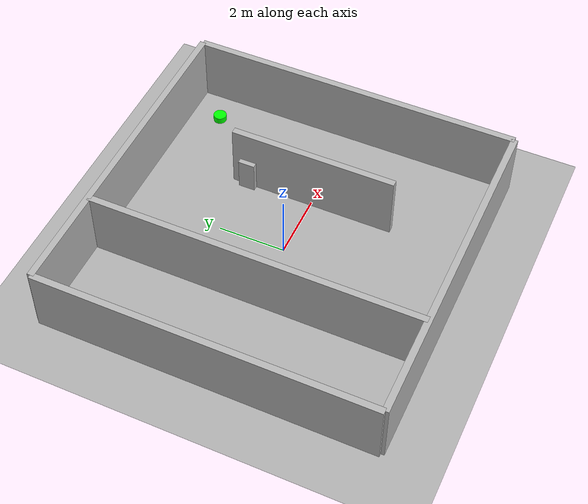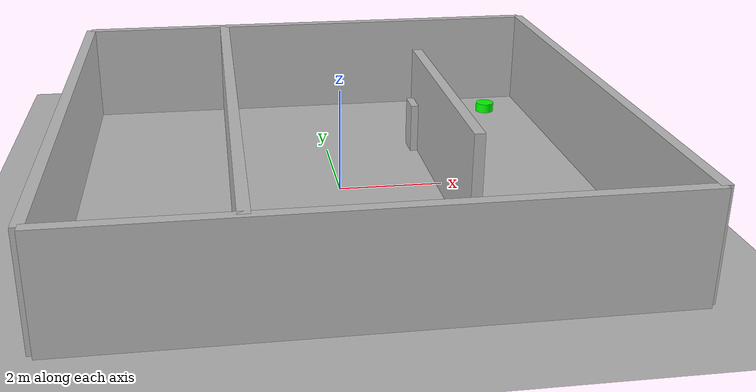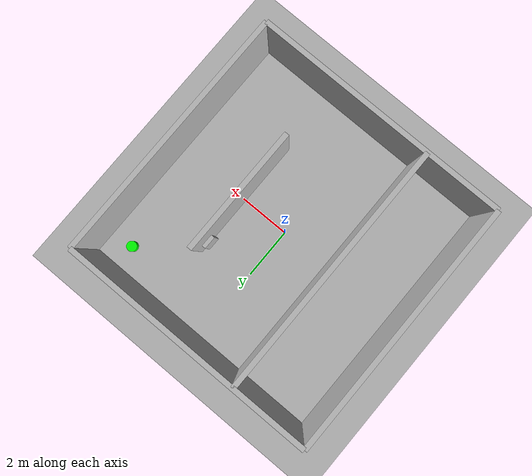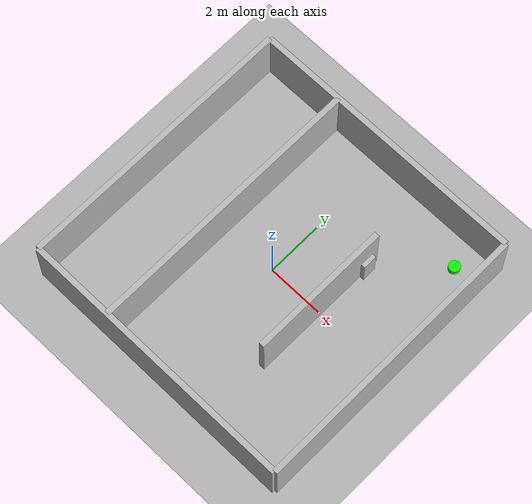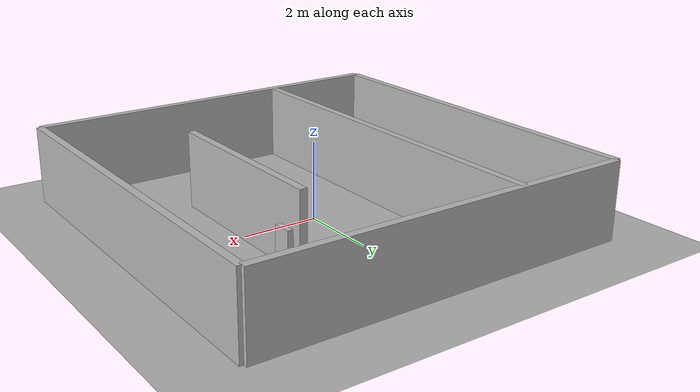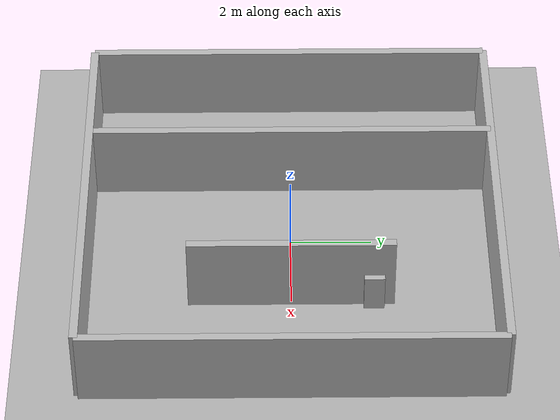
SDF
<?xml version="1.0"?>
<sdf version="1.6">

  <world name="room_world">

    <!-- Physics (must be before any models) -->
    <physics name="1ms" type="Bullet">
      <max_step_size>0.01</max_step_size>
        <publishContacts>1</publishContacts>
    </physics>
    <plugin
      filename="ignition-gazebo-physics-system"
      name="gz::sim::systems::Physics">
    </plugin>
    <plugin
      filename="ignition-gazebo-user-commands-system"
      name="gz::sim::systems::UserCommands">
    </plugin>
    <plugin
        filename="libignition-gazebo-scene-broadcaster-system.so"
        name="ignition::gazebo::systems::SceneBroadcaster">
    </plugin>
    <plugin filename="libignition-gazebo-contact-system.so"
        name="ignition::gazebo::systems::Contact">
    </plugin>

    <!--– Optional lightweight GUI -->
      <gui fullscreen="0">
        <!-- 3D scene -->
        <plugin filename="MinimalScene" name="3D View">
            <gz-gui>
                <title>3D View</title>
                    <property type="bool" key="showTitleBar">false</property>
                    <property type="string" key="state">docked</property>
            </gz-gui>

            <engine>ogre2</engine>
            <scene>scene</scene>
            <ambient_light>0.4 0.4 0.4</ambient_light>
            <background_color>0.8 0.8 0.8</background_color>
            <camera_pose>-6 0 6 0 0.5 0</camera_pose>
            <camera_clip>
                <near>0.25</near>
                <far>25000</far>
            </camera_clip>
            </plugin>
            <plugin filename="GzSceneManager" name="Scene Manager">
            <gz-gui>
                <property key="resizable" type="bool">false</property>
                <property key="width" type="double">5</property>
                <property key="height" type="double">5</property>
                <property key="state" type="string">floating</property>
                <property key="showTitleBar" type="bool">false</property>
            </gz-gui>
        </plugin>

        <!-- Entity tree -->
          <plugin filename="EntityTree" name="Entity tree">
            <gz-gui>
              <property type="string" key="state">docked_collapsed</property>
            </gz-gui>
          </plugin>

          <plugin filename="InteractiveViewControl" name="Interactive view control">
          <gz-gui>
            <property key="resizable" type="bool">false</property>
            <property key="width" type="double">5</property>
            <property key="height" type="double">5</property>
            <property key="state" type="string">floating</property>
            <property key="showTitleBar" type="bool">false</property>
          </gz-gui>
          </plugin>

          <!-- World statistics -->
          <plugin filename="WorldStats" name="World stats">
          <gz-gui>
            <title>World stats</title>
            <property type="bool" key="showTitleBar">false</property>
            <property type="bool" key="resizable">false</property>
            <property type="double" key="height">110</property>
            <property type="double" key="width">290</property>
            <property type="double" key="z">1</property>

            <property type="string" key="state">floating</property>
            <anchors target="3D View">
              <line own="right" target="right"/>
              <line own="bottom" target="bottom"/>
            </anchors>
          </gz-gui>

          <sim_time>true</sim_time>
          <real_time>true</real_time>
          <real_time_factor>true</real_time_factor>
          <iterations>true</iterations>
          </plugin>

          <!-- Teleop -->
          <plugin filename="Teleop" name="ignition::gui::plugins::Teleop">
            <topic>/controller/cmd_vel</topic>
            <ignition-gui>
              <property type="bool" key="showTitleBar">true</property>
              <property type="string" key="state">docked</property>
              <property key="resizable" type="bool">true</property>
            </ignition-gui>
          </plugin>

          <!-- Inspector -->
          <plugin filename="ComponentInspector" name="Component inspector">
            <gz-gui>
              <property type="string" key="state">docked_collapsed</property>
            </gz-gui>
          </plugin>

          <!-- Translate / rotate -->
          <plugin filename="TransformControl" name="Transform control">
            <gz-gui>
              <property key="resizable" type="bool">false</property>
              <property key="x" type="double">0</property>
              <property key="y" type="double">50</property>
              <property key="width" type="double">250</property>
              <property key="height" type="double">50</property>
              <property key="state" type="string">floating</property>
              <property key="showTitleBar" type="bool">false</property>
              <property key="cardBackground" type="string">#777777</property>
            </gz-gui>
          </plugin>

          <!-- visualize lidar -->
          <plugin filename="VisualizeLidar" name="Visualize Lidar">
          </plugin>

          <!-- World control -->
          <plugin filename="WorldControl" name="World control">
            <gz-gui>
              <title>World control</title>
              <property type="bool" key="showTitleBar">false</property>
              <property type="bool" key="resizable">false</property>
              <property type="double" key="height">72</property>
              <property type="double" key="width">121</property>
              <property type="double" key="z">1</property>

              <property type="string" key="state">floating</property>
              <anchors target="3D View">
                <line own="left" target="left"/>
                <line own="bottom" target="bottom"/>
              </anchors>
            </gz-gui>

            <play_pause>true</play_pause>
            <step>true</step>
            <start_paused>true</start_paused>
            <use_event>true</use_event>

          </plugin>

      </gui>

    <scene>
            <ambient>1.0 1.0 1.0</ambient>
            <background>0.8 0.8 0.8</background>
    </scene>

    <light type="directional" name="sun">
            <cast_shadows>true</cast_shadows>
            <pose>0 0 10 0 0 0</pose>
            <diffuse>0.8 0.8 0.8 1</diffuse>
            <specular>0.2 0.2 0.2 1</specular>
            <attenuation>
                <range>1000</range>
                <constant>0.9</constant>
                <linear>0.01</linear>
                <quadratic>0.001</quadratic>
            </attenuation>
            <direction>-0.5 0.1 -0.9</direction>
    </light>

    <!--– Top-down camera for map building -->

    <!-- Ground plane -->
    <!--– Ground -->
    <model name="ground_plane">
        <static>true</static>
        <link name="link">
            <collision name="collision">
                <geometry>
                    <plane>
                        <normal>0 0 1</normal>
                        <size>100 100</size>
                    </plane>
                </geometry>
                <surface>
                    <friction>
                        <ode>
                            <mu>100</mu>
                            <mu2>50</mu2>
                        </ode>
                    </friction>
                </surface>
            </collision>
            <visual name="visual">
                <cast_shadows>false</cast_shadows>
                <geometry>
                    <plane>
                        <normal>0 0 1</normal>
                        <size>100 100</size>
                    </plane>
                </geometry>
                <material>
                    <ambient>0.3 0.3 0.3 1</ambient>
                    <diffuse>0.7 0.7 0.7 1</diffuse>
                    <specular>0.01 0.01 0.01 1</specular>
                </material>
            </visual>
        </link>
    </model>

    <!-- Four room walls -->
    <model name="room">
      <static>true</static>

      <link name="wall1">
        <pose> 0  5 1 0 0 0 </pose>
        <collision name="col">
          <geometry><box><size>10 0.2 2</size></box></geometry>
        </collision>
        <visual name="vis">
          <geometry><box><size>10 0.2 2</size></box></geometry>
        </visual>

      </link>

      <link name="wall2">
        <pose> 0 -5 1 0 0 0 </pose>
        <collision name="col">
          <geometry><box><size>10 0.2 2</size></box></geometry>
        </collision>
        <visual name="vis">
          <geometry><box><size>10 0.2 2</size></box></geometry>
        </visual>
                        <sensor name='sensor_contact' type='contact'>
          <contact>
              <always_on>1</always_on>
          <!-- 50Hz 更新一次，也可以改成你要的 -->
            <update_rate>50</update_rate>
            <collision>col</collision>
          </contact>
        </sensor>
      </link>

      <link name="wall3">
        <pose> 5  0 1 0 0 0 </pose>
        <collision name="col">
          <geometry><box><size> 0.2 10 2 </size></box></geometry>
        </collision>
        <visual name="vis">
          <geometry><box><size> 0.2 10 2 </size></box></geometry>
        </visual>

      </link>

      <link name="wall4">
        <pose>-5  0 1 0 0 0 </pose>
        <collision name="col">
          <geometry><box><size> 0.2 10 2 </size></box></geometry>
        </collision>
        <visual name="vis">
          <geometry><box><size> 0.2 10 2 </size></box></geometry>
        </visual>

      </link>

        <link name="small_room">

        <collision name="col1">
        <pose>-2  0 1 0 0 0 </pose>
          <geometry><box><size> 0.2 10 2 </size></box></geometry>
        </collision>
        <visual name="vis1">
        <pose>-2  0 1 0 0 0 </pose>
          <geometry><box><size> 0.2 10 2 </size></box></geometry>
        </visual>

        <collision name="col2">
        <pose> 2  0 1 0 0 0 </pose>
          <geometry><box><size> 0.2 5 2 </size></box></geometry>
        </collision>
        <visual name="vis2">
        <pose> 2  0 1 0 0 0 </pose>
          <geometry><box><size> 0.2 5 2 </size></box></geometry>
        </visual>

                                <sensor name='sensor_contact' type='contact'>
          <contact>
              <always_on>1</always_on>
          <!-- 50Hz 更新一次，也可以改成你要的 -->
            <update_rate>50</update_rate>
            <collision>col1</collision>
            <collision>col2</collision>
          </contact>
        </sensor>

        </link>

    </model>

    <!-- Box -->
    <model name="box">
      <static>true</static>
      <link name="box_link">
        <pose>2 2 0.5 0 0 0</pose>
        <collision name="col">
          <geometry><box><size>0.5 0.5 1</size></box></geometry>
        </collision>
        <visual name="vis">
          <geometry><box><size>0.5 0.5 1</size></box></geometry>
        </visual>
        <sensor name='sensor_contact' type='contact'>
          <contact>
            <collision>col</collision>
          </contact>
        </sensor>
      </link>
      <plugin filename="libignition-gazebo-touchplugin-system.so"
          name="ignition::gazebo::systems::TouchPlugin">
        <target>jetauto</target>
        <namespace>box</namespace>
        <time>0.001</time>
        <enabled>false</enabled>
      </plugin>
    </model>

    <!-- Goal -->
    <model name="goal">
      <static>true</static>
      <link name="goal_link">
        <pose>4 4 0.1 0 0 0</pose>
        <visual name="vis">
          <geometry>
            <cylinder>
              <radius>0.2</radius>
              <length>0.2</length>
            </cylinder>
          </geometry>
          <material>
            <ambient>0 1 0 1</ambient>
            <diffuse>0 1 0 1</diffuse>
          </material>
        </visual>
      </link>
    </model>

  </world>
</sdf>
